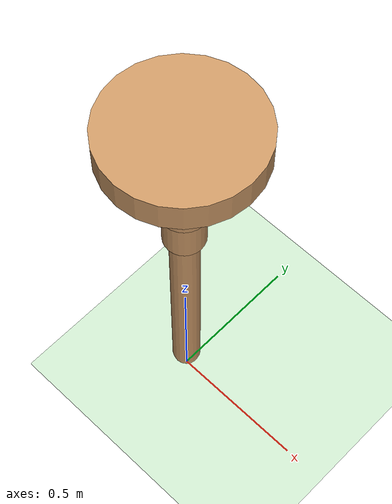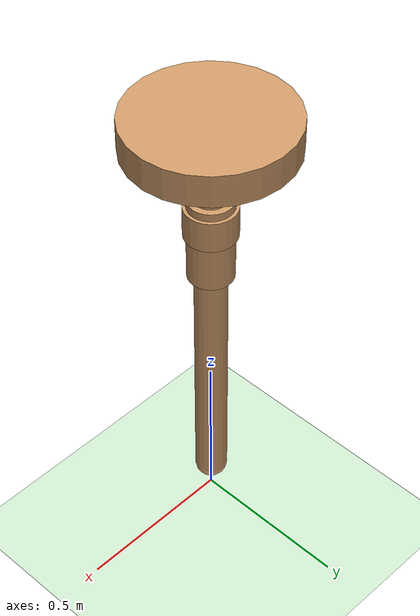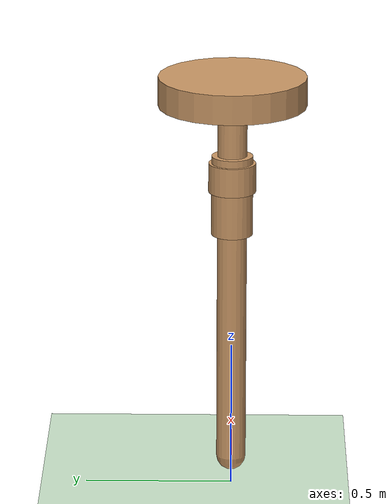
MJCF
<mujoco model="hopping robot">
  <compiler angle="degree" coordinate="global" inertiafromgeom="true"/>
  <default>
    <joint armature="1" damping="1" limited="true"/>
    <geom conaffinity="1" condim="1" contype="1" margin="0.001" material="geom" rgba="0.8 0.6 .4 1" solimp=".8 .8 .01" solref=".02 1"/>
    <motor ctrllimited="true" ctrlrange="-.4 .4"/>
  </default>
  <option integrator="RK4" timestep="0.002"/>
  <visual>
    <map znear="0.02"/>
  </visual>
  <worldbody>
    <light cutoff="100" diffuse="1 1 1" dir="-0 0 -1.3" directional="true" exponent="1" pos="0 0 1.3" specular=".1 .1 .1"/>
    <geom conaffinity="1" condim="3" name="floor" pos="0 0 0" rgba="0.8 0.9 0.8 1" size="20 20 .125" type="plane" material="MatPlane"/>
    <body name="torso" pos="0 0 1.25">
      <camera name="track" mode="trackcom" pos="0 -3 1" xyaxes="0 1 0 0 0 1"/>
      <joint armature="0" axis="1 0 0" damping="0" limited="false" name="rootx" pos="0 0 0" stiffness="0" type="slide"/>
      <joint armature="0" axis="0 0 1" damping="0" limited="false" name="rootz" pos="0 0 0" ref="1.25" stiffness="0" type="slide"/>
      <joint armature="0" axis="0 1 0" damping="0" limited="false" name="rooty" pos="0 0 1.25" stiffness="0" type="hinge"/>
      <geom mass="10" friction="0.9" fromto="0 0 1.35 0 0 1.45" name="torso_geom" size="0.25" type="cylinder"/>
      <body name="thigh" pos="0 0 1.05">
        <joint axis="0 0 1" name="thigh_joint" pos="0 0 1.4" range="-0.001 0" type="hinge"/>
        <geom mass="0.001" friction="0.9" fromto="0 0 1.1 0 0 1.4" name="thigh_geom" size="0.05" type="cylinder"/>
        <body name="leg2" pos="0 0 0.35">
          <joint axis="0 -1 0" name="leg2_joint" pos="0 0 1.1" range="-30 30" type="hinge"/>
          <geom mass="0.001" friction="0.9" fromto="0 0 1.15 0 0 1.05" name="leg_geom" size="0.08" type="cylinder"/>
          <body name="foot" pos="0 0 0.1">
            <joint axis="0 0 1" name="foot_joint" pos="0 0 1.1" range="-0.075 0.075" type="slide"/>
            <geom mass="0.001" friction="2.0" fromto="0 0 0.9 0 0 1.175" name="foot_geom" size="0.07" type="cylinder"/>
	    <body name="foot2" pos="0 0 0.1">
              <joint axis="0 0 1" name="foot2_joint" springdamper="1000 0.1" pos="0 0 1.1" range="-0.2 0" type="slide"/>
              <geom mass="1" friction="2.0" fromto="0 0 0.1 0 0 1.1" name="foot2_geom" size="0.05" type="capsule"/>
            </body>
          </body>
	</body>
      </body>
    </body>
  </worldbody>
  <actuator>
    <motor ctrllimited="true" ctrlrange="-1.0 1.0" gear="200.0" joint="leg2_joint"/>
    <motor ctrllimited="true" ctrlrange="-1.0 1.0" gear="2000.0" joint="foot_joint"/>
  </actuator>
    <asset>
        <texture type="skybox" builtin="gradient" rgb1=".4 .5 .6" rgb2="0 0 0"
            width="100" height="100"/>
        <texture builtin="flat" height="1278" mark="cross" markrgb="1 1 1" name="texgeom" random="0.01" rgb1="0.8 0.6 0.4" rgb2="0.8 0.6 0.4" type="cube" width="127"/>
        <texture builtin="checker" height="100" name="texplane" rgb1="0 0 0" rgb2="0.8 0.8 0.8" type="2d" width="100"/>
        <material name="MatPlane" reflectance="0.5" shininess="1" specular="1" texrepeat="60 60" texture="texplane"/>
        <material name="geom" texture="texgeom" texuniform="true"/>
    </asset>
</mujoco>
